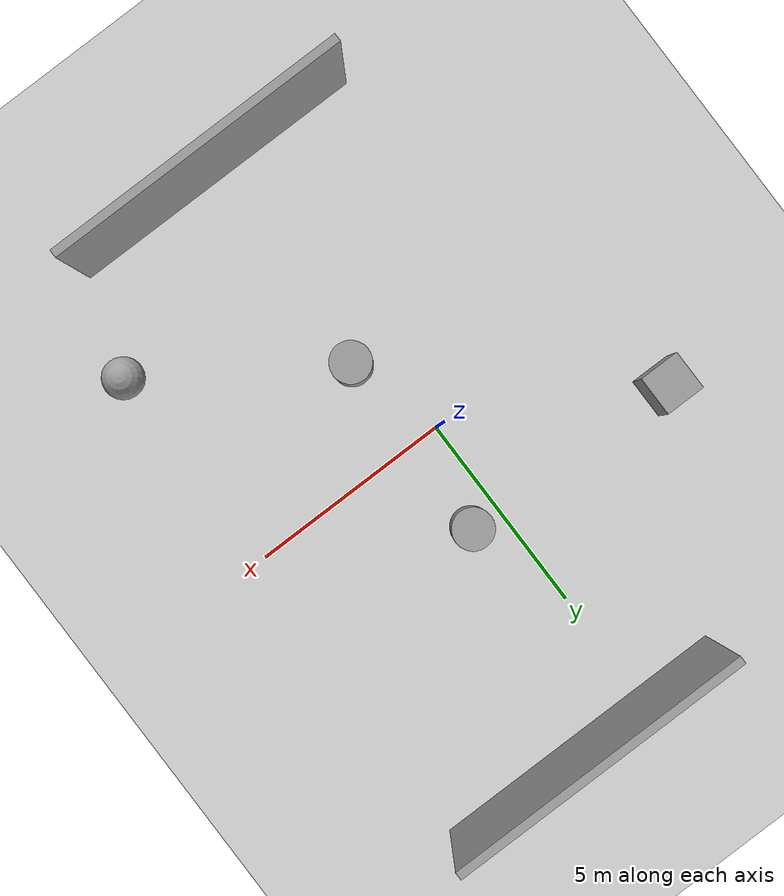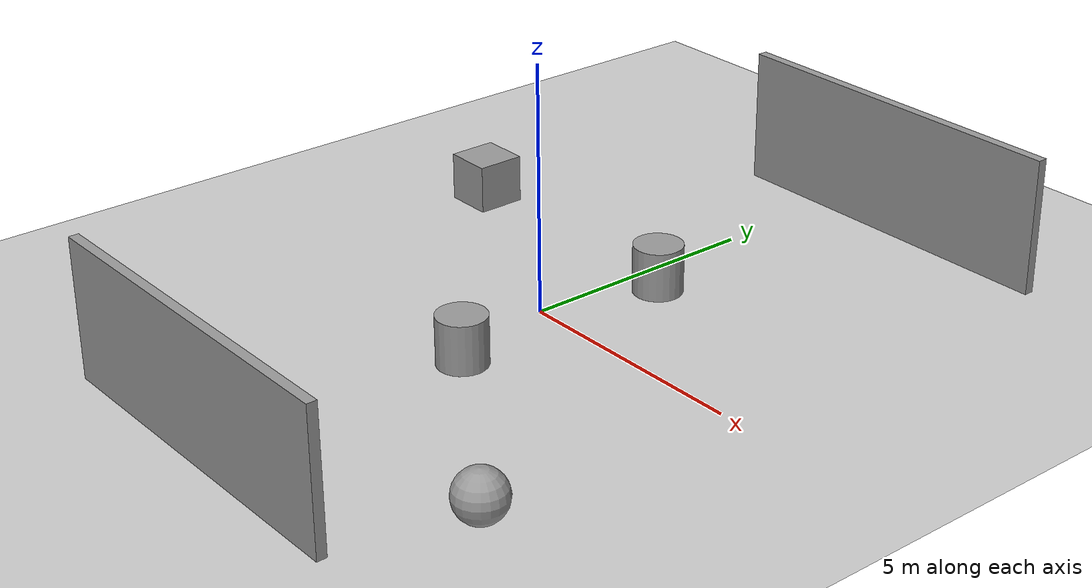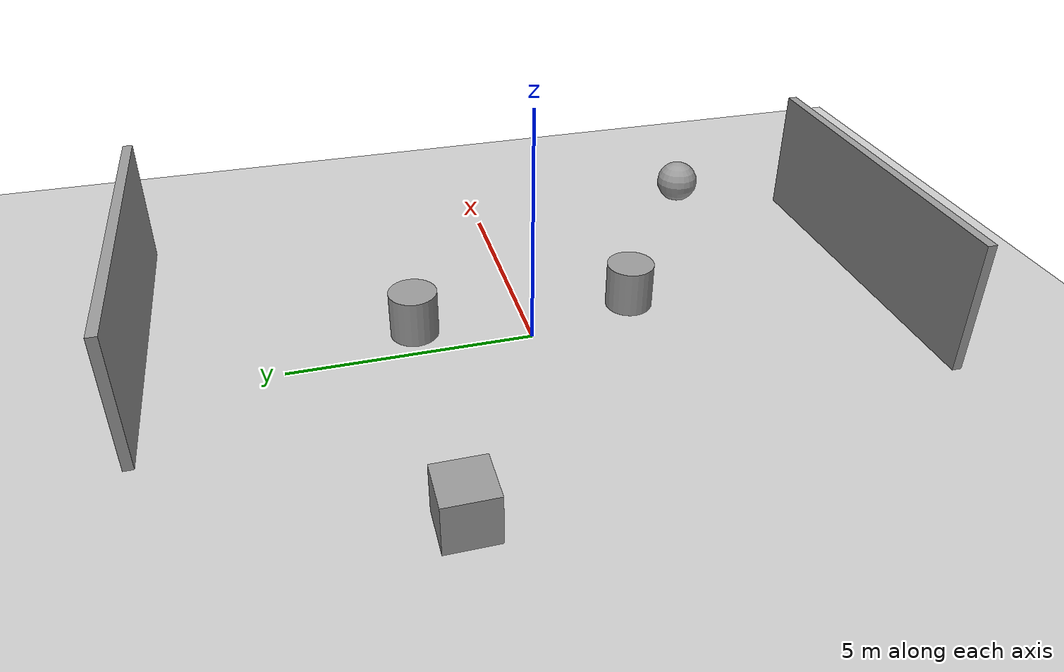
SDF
<sdf version="1.6">
 <world name="default">
  <light name="sun" type="directional">
   <pose>0 0 10 0 -0 0</pose>
   <diffuse>0.8 0.8 0.8 1</diffuse>
   <specular>0.2 0.2 0.2 1</specular>
   <attenuation>
    <range>1000</range>
    <constant>0.9</constant>
    <linear>0.01</linear>
    <quadratic>0.001</quadratic>
   </attenuation>
   <direction>-0.5 0.1 -0.9</direction>
  </light>
  <model name="ground_plane">
   <static>1</static>
   <link name="link">
    <collision name="collision">
     <geometry><plane><normal>0 0 1</normal><size>100 100</size></plane></geometry>
     <surface><friction><ode><mu>100</mu><mu2>50</mu2></ode></friction></surface>
    </collision>
    <visual name="visual">
     <cast_shadows>0</cast_shadows>
     <geometry><plane><normal>0 0 1</normal><size>100 100</size></plane></geometry>
     <material>
      <script><uri>file://media/materials/scripts/gazebo.material</uri><name>Gazebo/Grey</name></script>
     </material>
    </visual>
   </link>
  </model>
  <gravity>0 0 -9.8</gravity>
  <magnetic_field>6e-06 2.3e-05 -4.2e-05</magnetic_field>
  <atmosphere type="adiabatic"/>
  <physics name="default_physics" default="0" type="ode">
   <max_step_size>0.001</max_step_size>
   <real_time_factor>1</real_time_factor>
   <real_time_update_rate>1000</real_time_update_rate>
  </physics>
  <scene><ambient>0.4 0.4 0.4 1</ambient><background>0.7 0.7 0.7 1</background><shadows>1</shadows></scene>
  <audio><device>default</device></audio>
  <spherical_coordinates>
   <surface_model>EARTH_WGS84</surface_model>
   <latitude_deg>0</latitude_deg>
   <longitude_deg>0</longitude_deg>
   <elevation>0</elevation>
   <heading_deg>0</heading_deg>
  </spherical_coordinates>
  <model name="unit_cylinder">
   <pose>0.75291 2.31964 0.499997 3e-06 -2e-06 0</pose>
   <link name="link">
    <inertial>
     <mass>1</mass>
     <inertia><ixx>0.145833</ixx><ixy>0</ixy><ixz>0</ixz><iyy>0.145833</iyy><iyz>0</iyz><izz>0.125</izz></inertia>
    </inertial>
    <collision name="collision">
     <geometry><cylinder><radius>0.5</radius><length>1</length></cylinder></geometry>
    </collision>
    <visual name="visual">
     <geometry><cylinder><radius>0.5</radius><length>1</length></cylinder></geometry>
     <material>
      <script><name>Gazebo/Grey</name><uri>file://media/materials/scripts/gazebo.material</uri></script>
     </material>
    </visual>
   </link>
  </model>
  <model name="unit_cylinder_0">
   <pose>0.677996 -2.34033 0.499992 -3e-06 2e-06 0</pose>
   <link name="link">
    <inertial>
     <mass>1</mass>
     <inertia><ixx>0.145833</ixx><ixy>0</ixy><ixz>0</ixz><iyy>0.145833</iyy><iyz>0</iyz><izz>0.125</izz></inertia>
    </inertial>
    <collision name="collision">
     <geometry><cylinder><radius>0.5</radius><length>1</length></cylinder></geometry>
    </collision>
    <visual name="visual">
     <geometry><cylinder><radius>0.5</radius><length>1</length></cylinder></geometry>
     <material>
      <script><name>Gazebo/Grey</name><uri>file://media/materials/scripts/gazebo.material</uri></script>
     </material>
    </visual>
   </link>
  </model>
  <model name="unit_box">
   <pose>-4.79716 2.41691 0.499995 1e-05 -0 0</pose>
   <link name="link">
    <inertial>
     <mass>1</mass>
     <inertia>
      <ixx>0.166667</ixx>
      <ixy>0</ixy>
      <ixz>0</ixz>
      <iyy>0.166667</iyy>
      <iyz>0</iyz>
      <izz>0.166667</izz>
     </inertia>
    </inertial>
    <collision name="collision"><geometry><box><size>1 1 1</size></box></geometry></collision>
    <visual name="visual">
     <geometry><box><size>1 1 1</size></box></geometry>
     <material>
      <script><name>Gazebo/Grey</name><uri>file://media/materials/scripts/gazebo.material</uri></script>
     </material>
    </visual>
   </link>
  </model>
  <model name="unit_sphere">
   <pose>5.03621 -5.24481 0.5 0 -0 0</pose>
   <link name="link">
    <inertial>
     <mass>1</mass>
     <inertia><ixx>0.1</ixx><ixy>0</ixy><ixz>0</ixz><iyy>0.1</iyy><iyz>0</iyz><izz>0.1</izz></inertia>
    </inertial>
    <collision name="collision"><geometry><sphere><radius>0.5</radius></sphere></geometry></collision>
    <visual name="visual">
     <geometry><sphere><radius>0.5</radius></sphere></geometry>
     <material>
      <script><name>Gazebo/Grey</name><uri>file://media/materials/scripts/gazebo.material</uri></script>
     </material>
    </visual>
   </link>
  </model>
  <model name="grey_wall_0">
   <static>1</static>
   <link name="link">
    <pose>0 0 1.4 0 -0 0</pose>
    <collision name="collision"><geometry><box><size>7.5 0.2 2.8</size></box></geometry></collision>
    <visual name="visual">
     <cast_shadows>0</cast_shadows>
     <geometry><box><size>7.5 0.2 2.8</size></box></geometry>
     <material>
      <script>
       <uri>model://grey_wall/materials/scripts</uri>
       <uri>model://grey_wall/materials/textures</uri>
       <name>vrc/grey_wall</name>
      </script>
     </material>
    </visual>
   </link>
   <pose>1.68306 7.75939 0 0 -0 0</pose>
  </model>
  <model name="grey_wall">
   <static>1</static>
   <link name="link">
    <pose>0 0 1.4 0 -0 0</pose>
    <collision name="collision"><geometry><box><size>7.5 0.2 2.8</size></box></geometry></collision>
    <visual name="visual">
     <cast_shadows>0</cast_shadows>
     <geometry><box><size>7.5 0.2 2.8</size></box></geometry>
     <material>
      <script>
       <uri>model://grey_wall/materials/scripts</uri>
       <uri>model://grey_wall/materials/textures</uri>
       <name>vrc/grey_wall</name>
      </script>
     </material>
    </visual>
   </link>
   <pose>0.553758 -7.76595 0 0 -0 0</pose>
  </model>
 </world>
</sdf>
